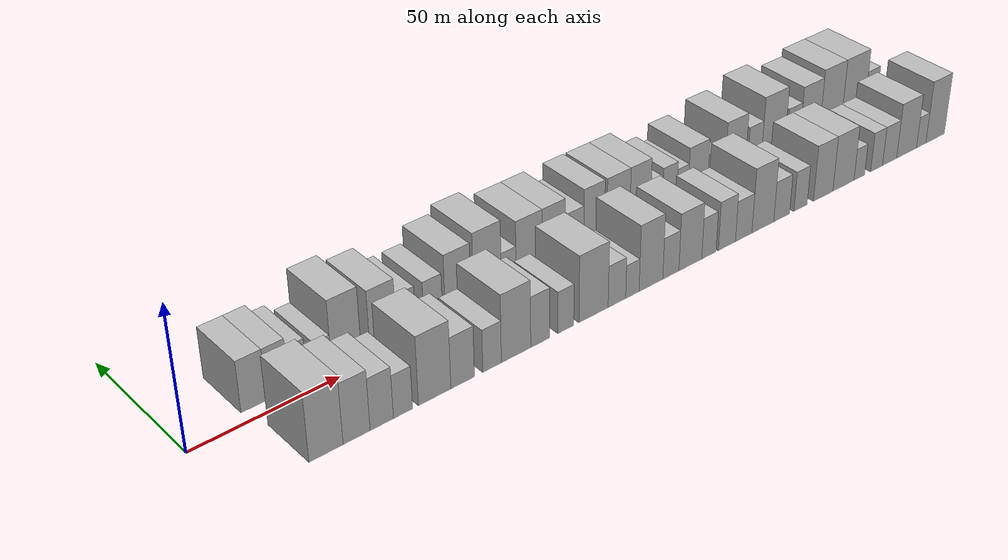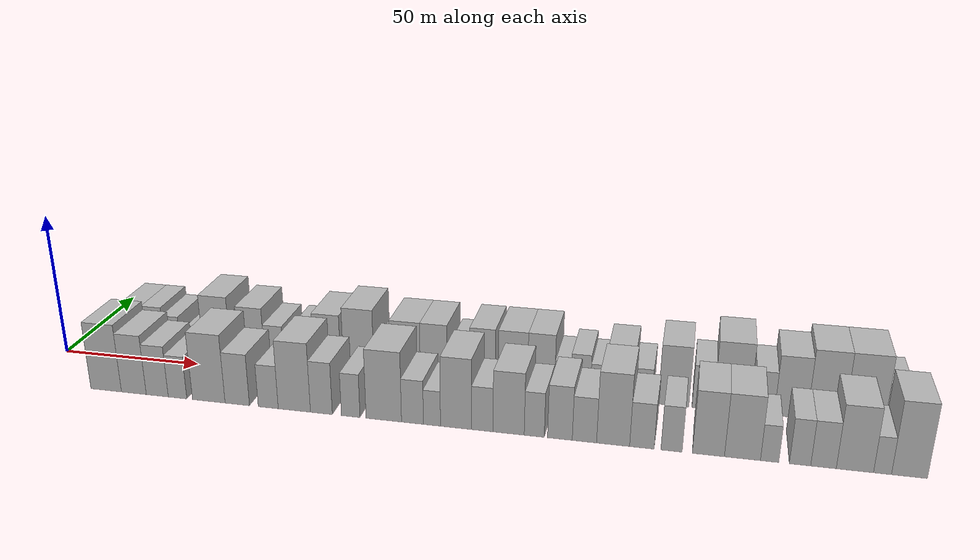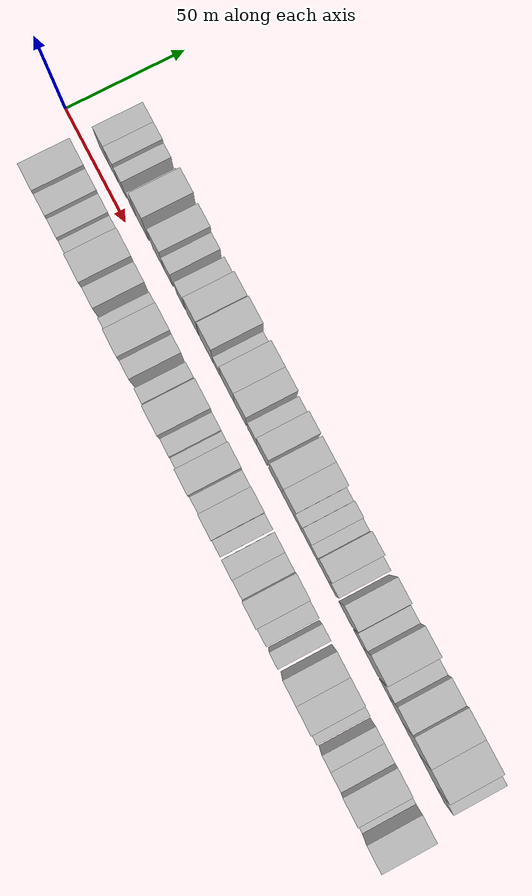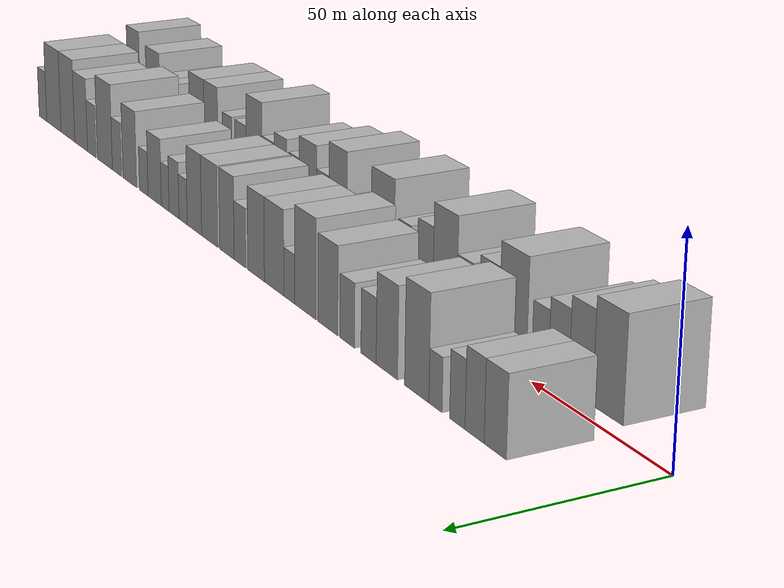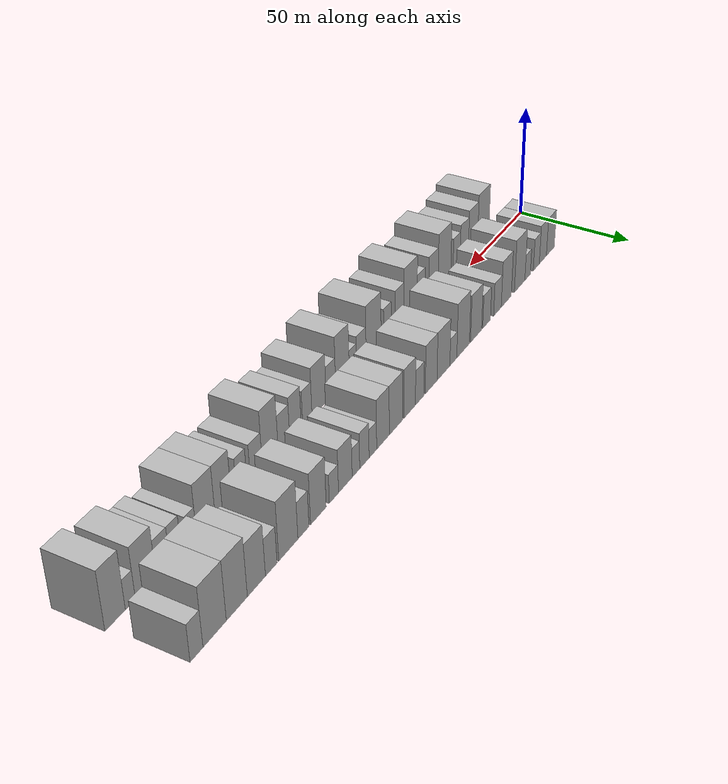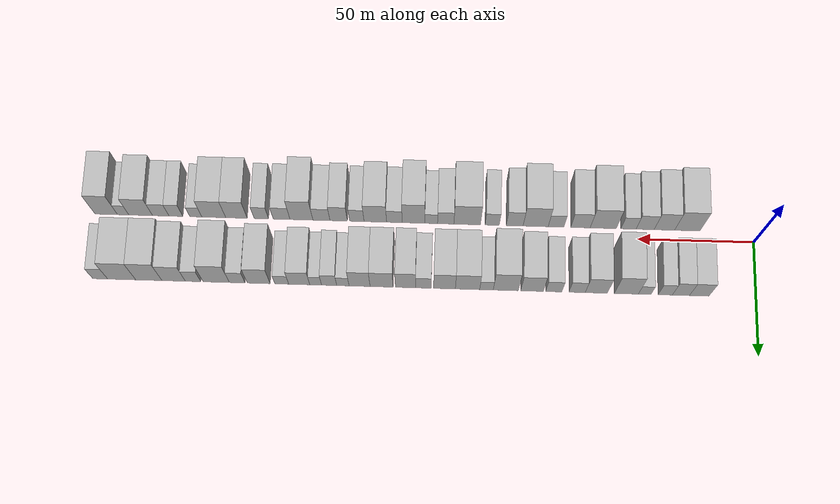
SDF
<sdf version="1.6">
 <world name="default">
  <scene>
   <sky><clouds><speed>12</speed></clouds></sky>
   <ambient>0.4 0.4 0.4 1</ambient>
   <background>0.7 0.7 0.7 1</background>
   <shadows>1</shadows>
  </scene>
  <gravity>0 0 -9.8066</gravity>
  <magnetic_field>6e-06 2.3e-05 -4.2e-05</magnetic_field>
  <physics default="0" name="default_physics" type="ode">
   <ode>
    <solver>
     <type>quick</type>
     <iters>10</iters>
     <sor>1.0</sor>
     <use_dynamic_moi_rescaling>0</use_dynamic_moi_rescaling>
    </solver>
    <constraints>
     <cfm>0</cfm>
     <erp>0.2</erp>
     <contact_max_correcting_vel>100</contact_max_correcting_vel>
     <contact_surface_layer>0.001</contact_surface_layer>
    </constraints>
   </ode>
   <max_step_size>0.004</max_step_size>
   <real_time_factor>1</real_time_factor>
   <real_time_update_rate>250</real_time_update_rate>
  </physics>
  <light name="sun" type="directional">
   <pose>0 0 10 0 0 0</pose>
   <diffuse>0.8 0.8 0.8 1</diffuse>
   <specular>0.2 0.2 0.2 1</specular>
   <attenuation>
    <range>1000</range>
    <constant>0.9</constant>
    <linear>0.01</linear>
    <quadratic>0.001</quadratic>
   </attenuation>
   <direction>-0.5 0.1 -0.9</direction>
  </light>
  <model name="building_1">
   <static>1</static>
   <pose>24.1604 14.5000 0 0.000000 0.000000 1.570796</pose>
   <link name="link">
    <pose>0 0 9.00 0 0 0</pose>
    <collision name="collision"><geometry><box><size>20.0000 8.3208 18.0000</size></box></geometry></collision>
    <visual name="visual">
     <cast_shadows>0</cast_shadows>
     <geometry><box><size>20.0000 8.3208 18.0000</size></box></geometry>
     <material>
      <script>
       <uri>model://HANNAS_wall/materials/scripts</uri>
       <uri>model://HANNAS_wall/materials/textures</uri>
       <name>vrc/HANNAS_wall</name>
      </script>
     </material>
    </visual>
   </link>
  </model>
  <model name="building_2">
   <static>1</static>
   <pose>31.9742 14.5000 0 0.000000 0.000000 1.570796</pose>
   <link name="link">
    <pose>0 0 9.00 0 0 0</pose>
    <collision name="collision"><geometry><box><size>20.0000 7.3067 18.0000</size></box></geometry></collision>
    <visual name="visual">
     <cast_shadows>0</cast_shadows>
     <geometry><box><size>20.0000 7.3067 18.0000</size></box></geometry>
     <material>
      <script>
       <uri>model://HANNAS_wall/materials/scripts</uri>
       <uri>model://HANNAS_wall/materials/textures</uri>
       <name>vrc/HANNAS_wall</name>
      </script>
     </material>
    </visual>
   </link>
  </model>
  <model name="building_3">
   <static>1</static>
   <pose>38.6614 14.5000 0 0.000000 0.000000 1.570796</pose>
   <link name="link">
    <pose>0 0 7.50 0 0 0</pose>
    <collision name="collision"><geometry><box><size>20.0000 6.0678 15.0000</size></box></geometry></collision>
    <visual name="visual">
     <cast_shadows>0</cast_shadows>
     <geometry><box><size>20.0000 6.0678 15.0000</size></box></geometry>
     <material>
      <script>
       <uri>model://HANNAS_wall/materials/scripts</uri>
       <uri>model://HANNAS_wall/materials/textures</uri>
       <name>vrc/HANNAS_wall</name>
      </script>
     </material>
    </visual>
   </link>
  </model>
  <model name="building_4">
   <static>1</static>
   <pose>47.3911 14.5000 0 0.000000 0.000000 1.570796</pose>
   <link name="link">
    <pose>0 0 6.00 0 0 0</pose>
    <collision name="collision"><geometry><box><size>20.0000 5.3915 12.0000</size></box></geometry></collision>
    <visual name="visual">
     <cast_shadows>0</cast_shadows>
     <geometry><box><size>20.0000 5.3915 12.0000</size></box></geometry>
     <material>
      <script>
       <uri>model://HANNAS_wall/materials/scripts</uri>
       <uri>model://HANNAS_wall/materials/textures</uri>
       <name>vrc/HANNAS_wall</name>
      </script>
     </material>
    </visual>
   </link>
  </model>
  <model name="building_5">
   <static>1</static>
   <pose>55.1870 14.5000 0 0.000000 0.000000 1.570796</pose>
   <link name="link">
    <pose>0 0 12.00 0 0 0</pose>
    <collision name="collision"><geometry><box><size>20.0000 10.2002 24.0000</size></box></geometry></collision>
    <visual name="visual">
     <cast_shadows>0</cast_shadows>
     <geometry><box><size>20.0000 10.2002 24.0000</size></box></geometry>
     <material>
      <script>
       <uri>model://HANNAS_wall/materials/scripts</uri>
       <uri>model://HANNAS_wall/materials/textures</uri>
       <name>vrc/HANNAS_wall</name>
      </script>
     </material>
    </visual>
   </link>
  </model>
  <model name="building_6">
   <static>1</static>
   <pose>68.0030 14.5000 0 0.000000 0.000000 1.570796</pose>
   <link name="link">
    <pose>0 0 10.50 0 0 0</pose>
    <collision name="collision"><geometry><box><size>20.0000 9.4317 21.0000</size></box></geometry></collision>
    <visual name="visual">
     <cast_shadows>0</cast_shadows>
     <geometry><box><size>20.0000 9.4317 21.0000</size></box></geometry>
     <material>
      <script>
       <uri>model://HANNAS_wall/materials/scripts</uri>
       <uri>model://HANNAS_wall/materials/textures</uri>
       <name>vrc/HANNAS_wall</name>
      </script>
     </material>
    </visual>
   </link>
  </model>
  <model name="building_7">
   <static>1</static>
   <pose>76.1859 14.5000 0 0.000000 0.000000 1.570796</pose>
   <link name="link">
    <pose>0 0 7.50 0 0 0</pose>
    <collision name="collision"><geometry><box><size>20.0000 6.9342 15.0000</size></box></geometry></collision>
    <visual name="visual">
     <cast_shadows>0</cast_shadows>
     <geometry><box><size>20.0000 6.9342 15.0000</size></box></geometry>
     <material>
      <script>
       <uri>model://HANNAS_wall/materials/scripts</uri>
       <uri>model://HANNAS_wall/materials/textures</uri>
       <name>vrc/HANNAS_wall</name>
      </script>
     </material>
    </visual>
   </link>
  </model>
  <model name="building_8">
   <static>1</static>
   <pose>86.0988 14.5000 0 0.000000 0.000000 1.570796</pose>
   <link name="link">
    <pose>0 0 7.50 0 0 0</pose>
    <collision name="collision"><geometry><box><size>20.0000 6.8917 15.0000</size></box></geometry></collision>
    <visual name="visual">
     <cast_shadows>0</cast_shadows>
     <geometry><box><size>20.0000 6.8917 15.0000</size></box></geometry>
     <material>
      <script>
       <uri>model://HANNAS_wall/materials/scripts</uri>
       <uri>model://HANNAS_wall/materials/textures</uri>
       <name>vrc/HANNAS_wall</name>
      </script>
     </material>
    </visual>
   </link>
  </model>
  <model name="building_9">
   <static>1</static>
   <pose>95.3687 14.5000 0 0.000000 0.000000 1.570796</pose>
   <link name="link">
    <pose>0 0 10.50 0 0 0</pose>
    <collision name="collision"><geometry><box><size>20.0000 9.6481 21.0000</size></box></geometry></collision>
    <visual name="visual">
     <cast_shadows>0</cast_shadows>
     <geometry><box><size>20.0000 9.6481 21.0000</size></box></geometry>
     <material>
      <script>
       <uri>model://HANNAS_wall/materials/scripts</uri>
       <uri>model://HANNAS_wall/materials/textures</uri>
       <name>vrc/HANNAS_wall</name>
      </script>
     </material>
    </visual>
   </link>
  </model>
  <model name="building_10">
   <static>1</static>
   <pose>106.5417 14.5000 0 0.000000 0.000000 1.570796</pose>
   <link name="link">
    <pose>0 0 12.00 0 0 0</pose>
    <collision name="collision"><geometry><box><size>20.0000 10.6978 24.0000</size></box></geometry></collision>
    <visual name="visual">
     <cast_shadows>0</cast_shadows>
     <geometry><box><size>20.0000 10.6978 24.0000</size></box></geometry>
     <material>
      <script>
       <uri>model://HANNAS_wall/materials/scripts</uri>
       <uri>model://HANNAS_wall/materials/textures</uri>
       <name>vrc/HANNAS_wall</name>
      </script>
     </material>
    </visual>
   </link>
  </model>
  <model name="building_11">
   <static>1</static>
   <pose>114.7731 14.5000 0 0.000000 0.000000 1.570796</pose>
   <link name="link">
    <pose>0 0 6.00 0 0 0</pose>
    <collision name="collision"><geometry><box><size>20.0000 5.7651 12.0000</size></box></geometry></collision>
    <visual name="visual">
     <cast_shadows>0</cast_shadows>
     <geometry><box><size>20.0000 5.7651 12.0000</size></box></geometry>
     <material>
      <script>
       <uri>model://HANNAS_wall/materials/scripts</uri>
       <uri>model://HANNAS_wall/materials/textures</uri>
       <name>vrc/HANNAS_wall</name>
      </script>
     </material>
    </visual>
   </link>
  </model>
  <model name="building_12">
   <static>1</static>
   <pose>122.8553 14.5000 0 0.000000 0.000000 1.570796</pose>
   <link name="link">
    <pose>0 0 10.50 0 0 0</pose>
    <collision name="collision"><geometry><box><size>20.0000 10.3992 21.0000</size></box></geometry></collision>
    <visual name="visual">
     <cast_shadows>0</cast_shadows>
     <geometry><box><size>20.0000 10.3992 21.0000</size></box></geometry>
     <material>
      <script>
       <uri>model://HANNAS_wall/materials/scripts</uri>
       <uri>model://HANNAS_wall/materials/textures</uri>
       <name>vrc/HANNAS_wall</name>
      </script>
     </material>
    </visual>
   </link>
  </model>
  <model name="building_13">
   <static>1</static>
   <pose>132.6908 14.5000 0 0.000000 0.000000 1.570796</pose>
   <link name="link">
    <pose>0 0 10.50 0 0 0</pose>
    <collision name="collision"><geometry><box><size>20.0000 9.2719 21.0000</size></box></geometry></collision>
    <visual name="visual">
     <cast_shadows>0</cast_shadows>
     <geometry><box><size>20.0000 9.2719 21.0000</size></box></geometry>
     <material>
      <script>
       <uri>model://HANNAS_wall/materials/scripts</uri>
       <uri>model://HANNAS_wall/materials/textures</uri>
       <name>vrc/HANNAS_wall</name>
      </script>
     </material>
    </visual>
   </link>
  </model>
  <model name="building_14">
   <static>1</static>
   <pose>141.6490 14.5000 0 0.000000 0.000000 1.570796</pose>
   <link name="link">
    <pose>0 0 7.50 0 0 0</pose>
    <collision name="collision"><geometry><box><size>20.0000 6.6446 15.0000</size></box></geometry></collision>
    <visual name="visual">
     <cast_shadows>0</cast_shadows>
     <geometry><box><size>20.0000 6.6446 15.0000</size></box></geometry>
     <material>
      <script>
       <uri>model://HANNAS_wall/materials/scripts</uri>
       <uri>model://HANNAS_wall/materials/textures</uri>
       <name>vrc/HANNAS_wall</name>
      </script>
     </material>
    </visual>
   </link>
  </model>
  <model name="building_15">
   <static>1</static>
   <pose>149.2623 14.5000 0 0.000000 0.000000 1.570796</pose>
   <link name="link">
    <pose>0 0 10.50 0 0 0</pose>
    <collision name="collision"><geometry><box><size>20.0000 8.5821 21.0000</size></box></geometry></collision>
    <visual name="visual">
     <cast_shadows>0</cast_shadows>
     <geometry><box><size>20.0000 8.5821 21.0000</size></box></geometry>
     <material>
      <script>
       <uri>model://HANNAS_wall/materials/scripts</uri>
       <uri>model://HANNAS_wall/materials/textures</uri>
       <name>vrc/HANNAS_wall</name>
      </script>
     </material>
    </visual>
   </link>
  </model>
  <model name="building_16">
   <static>1</static>
   <pose>159.4754 14.5000 0 0.000000 0.000000 1.570796</pose>
   <link name="link">
    <pose>0 0 10.50 0 0 0</pose>
    <collision name="collision"><geometry><box><size>20.0000 9.8442 21.0000</size></box></geometry></collision>
    <visual name="visual">
     <cast_shadows>0</cast_shadows>
     <geometry><box><size>20.0000 9.8442 21.0000</size></box></geometry>
     <material>
      <script>
       <uri>model://HANNAS_wall/materials/scripts</uri>
       <uri>model://HANNAS_wall/materials/textures</uri>
       <name>vrc/HANNAS_wall</name>
      </script>
     </material>
    </visual>
   </link>
  </model>
  <model name="building_17">
   <static>1</static>
   <pose>168.8859 14.5000 0 0.000000 0.000000 1.570796</pose>
   <link name="link">
    <pose>0 0 10.50 0 0 0</pose>
    <collision name="collision"><geometry><box><size>20.0000 8.9767 21.0000</size></box></geometry></collision>
    <visual name="visual">
     <cast_shadows>0</cast_shadows>
     <geometry><box><size>20.0000 8.9767 21.0000</size></box></geometry>
     <material>
      <script>
       <uri>model://HANNAS_wall/materials/scripts</uri>
       <uri>model://HANNAS_wall/materials/textures</uri>
       <name>vrc/HANNAS_wall</name>
      </script>
     </material>
    </visual>
   </link>
  </model>
  <model name="building_18">
   <static>1</static>
   <pose>176.0145 14.5000 0 0.000000 0.000000 1.570796</pose>
   <link name="link">
    <pose>0 0 6.00 0 0 0</pose>
    <collision name="collision"><geometry><box><size>20.0000 5.2805 12.0000</size></box></geometry></collision>
    <visual name="visual">
     <cast_shadows>0</cast_shadows>
     <geometry><box><size>20.0000 5.2805 12.0000</size></box></geometry>
     <material>
      <script>
       <uri>model://HANNAS_wall/materials/scripts</uri>
       <uri>model://HANNAS_wall/materials/textures</uri>
       <name>vrc/HANNAS_wall</name>
      </script>
     </material>
    </visual>
   </link>
  </model>
  <model name="building_19">
   <static>1</static>
   <pose>181.8732 14.5000 0 0.000000 0.000000 1.570796</pose>
   <link name="link">
    <pose>0 0 7.50 0 0 0</pose>
    <collision name="collision"><geometry><box><size>20.0000 6.4368 15.0000</size></box></geometry></collision>
    <visual name="visual">
     <cast_shadows>0</cast_shadows>
     <geometry><box><size>20.0000 6.4368 15.0000</size></box></geometry>
     <material>
      <script>
       <uri>model://HANNAS_wall/materials/scripts</uri>
       <uri>model://HANNAS_wall/materials/textures</uri>
       <name>vrc/HANNAS_wall</name>
      </script>
     </material>
    </visual>
   </link>
  </model>
  <model name="building_20">
   <static>1</static>
   <pose>187.6215 14.5000 0 0.000000 0.000000 1.570796</pose>
   <link name="link">
    <pose>0 0 6.00 0 0 0</pose>
    <collision name="collision"><geometry><box><size>20.0000 5.0598 12.0000</size></box></geometry></collision>
    <visual name="visual">
     <cast_shadows>0</cast_shadows>
     <geometry><box><size>20.0000 5.0598 12.0000</size></box></geometry>
     <material>
      <script>
       <uri>model://HANNAS_wall/materials/scripts</uri>
       <uri>model://HANNAS_wall/materials/textures</uri>
       <name>vrc/HANNAS_wall</name>
      </script>
     </material>
    </visual>
   </link>
  </model>
  <model name="building_21">
   <static>1</static>
   <pose>194.6478 14.5000 0 0.000000 0.000000 1.570796</pose>
   <link name="link">
    <pose>0 0 9.00 0 0 0</pose>
    <collision name="collision"><geometry><box><size>20.0000 8.9928 18.0000</size></box></geometry></collision>
    <visual name="visual">
     <cast_shadows>0</cast_shadows>
     <geometry><box><size>20.0000 8.9928 18.0000</size></box></geometry>
     <material>
      <script>
       <uri>model://HANNAS_wall/materials/scripts</uri>
       <uri>model://HANNAS_wall/materials/textures</uri>
       <name>vrc/HANNAS_wall</name>
      </script>
     </material>
    </visual>
   </link>
  </model>
  <model name="building_22">
   <static>1</static>
   <pose>202.1001 14.5000 0 0.000000 0.000000 1.570796</pose>
   <link name="link">
    <pose>0 0 6.00 0 0 0</pose>
    <collision name="collision"><geometry><box><size>20.0000 5.9119 12.0000</size></box></geometry></collision>
    <visual name="visual">
     <cast_shadows>0</cast_shadows>
     <geometry><box><size>20.0000 5.9119 12.0000</size></box></geometry>
     <material>
      <script>
       <uri>model://HANNAS_wall/materials/scripts</uri>
       <uri>model://HANNAS_wall/materials/textures</uri>
       <name>vrc/HANNAS_wall</name>
      </script>
     </material>
    </visual>
   </link>
  </model>
  <model name="building_23">
   <static>1</static>
   <pose>211.9157 14.5000 0 0.000000 0.000000 1.570796</pose>
   <link name="link">
    <pose>0 0 10.50 0 0 0</pose>
    <collision name="collision"><geometry><box><size>20.0000 9.7193 21.0000</size></box></geometry></collision>
    <visual name="visual">
     <cast_shadows>0</cast_shadows>
     <geometry><box><size>20.0000 9.7193 21.0000</size></box></geometry>
     <material>
      <script>
       <uri>model://HANNAS_wall/materials/scripts</uri>
       <uri>model://HANNAS_wall/materials/textures</uri>
       <name>vrc/HANNAS_wall</name>
      </script>
     </material>
    </visual>
   </link>
  </model>
  <model name="building_24">
   <static>1</static>
   <pose>221.1197 14.5000 0 0.000000 0.000000 1.570796</pose>
   <link name="link">
    <pose>0 0 7.50 0 0 0</pose>
    <collision name="collision"><geometry><box><size>20.0000 6.6887 15.0000</size></box></geometry></collision>
    <visual name="visual">
     <cast_shadows>0</cast_shadows>
     <geometry><box><size>20.0000 6.6887 15.0000</size></box></geometry>
     <material>
      <script>
       <uri>model://HANNAS_wall/materials/scripts</uri>
       <uri>model://HANNAS_wall/materials/textures</uri>
       <name>vrc/HANNAS_wall</name>
      </script>
     </material>
    </visual>
   </link>
  </model>
  <model name="building_25">
   <static>1</static>
   <pose>230.0817 14.5000 0 0.000000 0.000000 1.570796</pose>
   <link name="link">
    <pose>0 0 12.00 0 0 0</pose>
    <collision name="collision"><geometry><box><size>20.0000 11.2353 24.0000</size></box></geometry></collision>
    <visual name="visual">
     <cast_shadows>0</cast_shadows>
     <geometry><box><size>20.0000 11.2353 24.0000</size></box></geometry>
     <material>
      <script>
       <uri>model://HANNAS_wall/materials/scripts</uri>
       <uri>model://HANNAS_wall/materials/textures</uri>
       <name>vrc/HANNAS_wall</name>
      </script>
     </material>
    </visual>
   </link>
  </model>
  <model name="building_26">
   <static>1</static>
   <pose>240.0047 14.5000 0 0.000000 0.000000 1.570796</pose>
   <link name="link">
    <pose>0 0 7.50 0 0 0</pose>
    <collision name="collision"><geometry><box><size>20.0000 6.6107 15.0000</size></box></geometry></collision>
    <visual name="visual">
     <cast_shadows>0</cast_shadows>
     <geometry><box><size>20.0000 6.6107 15.0000</size></box></geometry>
     <material>
      <script>
       <uri>model://HANNAS_wall/materials/scripts</uri>
       <uri>model://HANNAS_wall/materials/textures</uri>
       <name>vrc/HANNAS_wall</name>
      </script>
     </material>
    </visual>
   </link>
  </model>
  <model name="building_27">
   <static>1</static>
   <pose>248.3241 14.5000 0 0.000000 0.000000 1.570796</pose>
   <link name="link">
    <pose>0 0 10.50 0 0 0</pose>
    <collision name="collision"><geometry><box><size>20.0000 10.0281 21.0000</size></box></geometry></collision>
    <visual name="visual">
     <cast_shadows>0</cast_shadows>
     <geometry><box><size>20.0000 10.0281 21.0000</size></box></geometry>
     <material>
      <script>
       <uri>model://HANNAS_wall/materials/scripts</uri>
       <uri>model://HANNAS_wall/materials/textures</uri>
       <name>vrc/HANNAS_wall</name>
      </script>
     </material>
    </visual>
   </link>
  </model>
  <model name="building_28">
   <static>1</static>
   <pose>258.9461 14.5000 0 0.000000 0.000000 1.570796</pose>
   <link name="link">
    <pose>0 0 12.00 0 0 0</pose>
    <collision name="collision"><geometry><box><size>20.0000 11.2160 24.0000</size></box></geometry></collision>
    <visual name="visual">
     <cast_shadows>0</cast_shadows>
     <geometry><box><size>20.0000 11.2160 24.0000</size></box></geometry>
     <material>
      <script>
       <uri>model://HANNAS_wall/materials/scripts</uri>
       <uri>model://HANNAS_wall/materials/textures</uri>
       <name>vrc/HANNAS_wall</name>
      </script>
     </material>
    </visual>
   </link>
  </model>
  <model name="building_29">
   <static>1</static>
   <pose>270.5428 14.5000 0 0.000000 0.000000 1.570796</pose>
   <link name="link">
    <pose>0 0 12.00 0 0 0</pose>
    <collision name="collision"><geometry><box><size>20.0000 11.9774 24.0000</size></box></geometry></collision>
    <visual name="visual">
     <cast_shadows>0</cast_shadows>
     <geometry><box><size>20.0000 11.9774 24.0000</size></box></geometry>
     <material>
      <script>
       <uri>model://HANNAS_wall/materials/scripts</uri>
       <uri>model://HANNAS_wall/materials/textures</uri>
       <name>vrc/HANNAS_wall</name>
      </script>
     </material>
    </visual>
   </link>
  </model>
  <model name="building_30">
   <static>1</static>
   <pose>279.7384 14.5000 0 0.000000 0.000000 1.570796</pose>
   <link name="link">
    <pose>0 0 7.50 0 0 0</pose>
    <collision name="collision"><geometry><box><size>20.0000 6.4136 15.0000</size></box></geometry></collision>
    <visual name="visual">
     <cast_shadows>0</cast_shadows>
     <geometry><box><size>20.0000 6.4136 15.0000</size></box></geometry>
     <material>
      <script>
       <uri>model://HANNAS_wall/materials/scripts</uri>
       <uri>model://HANNAS_wall/materials/textures</uri>
       <name>vrc/HANNAS_wall</name>
      </script>
     </material>
    </visual>
   </link>
  </model>
  <model name="building_31">
   <static>1</static>
   <pose>28.4943 -14.5000 0 0.000000 0.000000 1.570796</pose>
   <link name="link">
    <pose>0 0 12.00 0 0 0</pose>
    <collision name="collision"><geometry><box><size>20.0000 10.9887 24.0000</size></box></geometry></collision>
    <visual name="visual">
     <cast_shadows>0</cast_shadows>
     <geometry><box><size>20.0000 10.9887 24.0000</size></box></geometry>
     <material>
      <script>
       <uri>model://HANNAS_wall/materials/scripts</uri>
       <uri>model://HANNAS_wall/materials/textures</uri>
       <name>vrc/HANNAS_wall</name>
      </script>
     </material>
    </visual>
   </link>
  </model>
  <model name="building_32">
   <static>1</static>
   <pose>38.4174 -14.5000 0 0.000000 0.000000 1.570796</pose>
   <link name="link">
    <pose>0 0 10.50 0 0 0</pose>
    <collision name="collision"><geometry><box><size>20.0000 8.8575 21.0000</size></box></geometry></collision>
    <visual name="visual">
     <cast_shadows>0</cast_shadows>
     <geometry><box><size>20.0000 8.8575 21.0000</size></box></geometry>
     <material>
      <script>
       <uri>model://HANNAS_wall/materials/scripts</uri>
       <uri>model://HANNAS_wall/materials/textures</uri>
       <name>vrc/HANNAS_wall</name>
      </script>
     </material>
    </visual>
   </link>
  </model>
  <model name="building_33">
   <static>1</static>
   <pose>46.7349 -14.5000 0 0.000000 0.000000 1.570796</pose>
   <link name="link">
    <pose>0 0 9.00 0 0 0</pose>
    <collision name="collision"><geometry><box><size>20.0000 7.7775 18.0000</size></box></geometry></collision>
    <visual name="visual">
     <cast_shadows>0</cast_shadows>
     <geometry><box><size>20.0000 7.7775 18.0000</size></box></geometry>
     <material>
      <script>
       <uri>model://HANNAS_wall/materials/scripts</uri>
       <uri>model://HANNAS_wall/materials/textures</uri>
       <name>vrc/HANNAS_wall</name>
      </script>
     </material>
    </visual>
   </link>
  </model>
  <model name="building_34">
   <static>1</static>
   <pose>53.8844 -14.5000 0 0.000000 0.000000 1.570796</pose>
   <link name="link">
    <pose>0 0 7.50 0 0 0</pose>
    <collision name="collision"><geometry><box><size>20.0000 6.5215 15.0000</size></box></geometry></collision>
    <visual name="visual">
     <cast_shadows>0</cast_shadows>
     <geometry><box><size>20.0000 6.5215 15.0000</size></box></geometry>
     <material>
      <script>
       <uri>model://HANNAS_wall/materials/scripts</uri>
       <uri>model://HANNAS_wall/materials/textures</uri>
       <name>vrc/HANNAS_wall</name>
      </script>
     </material>
    </visual>
   </link>
  </model>
  <model name="building_35">
   <static>1</static>
   <pose>64.7902 -14.5000 0 0.000000 0.000000 1.570796</pose>
   <link name="link">
    <pose>0 0 12.00 0 0 0</pose>
    <collision name="collision"><geometry><box><size>20.0000 11.2901 24.0000</size></box></geometry></collision>
    <visual name="visual">
     <cast_shadows>0</cast_shadows>
     <geometry><box><size>20.0000 11.2901 24.0000</size></box></geometry>
     <material>
      <script>
       <uri>model://HANNAS_wall/materials/scripts</uri>
       <uri>model://HANNAS_wall/materials/textures</uri>
       <name>vrc/HANNAS_wall</name>
      </script>
     </material>
    </visual>
   </link>
  </model>
  <model name="building_36">
   <static>1</static>
   <pose>74.6236 -14.5000 0 0.000000 0.000000 1.570796</pose>
   <link name="link">
    <pose>0 0 9.00 0 0 0</pose>
    <collision name="collision"><geometry><box><size>20.0000 8.3767 18.0000</size></box></geometry></collision>
    <visual name="visual">
     <cast_shadows>0</cast_shadows>
     <geometry><box><size>20.0000 8.3767 18.0000</size></box></geometry>
     <material>
      <script>
       <uri>model://HANNAS_wall/materials/scripts</uri>
       <uri>model://HANNAS_wall/materials/textures</uri>
       <name>vrc/HANNAS_wall</name>
      </script>
     </material>
    </visual>
   </link>
  </model>
  <model name="building_37">
   <static>1</static>
   <pose>85.1966 -14.5000 0 0.000000 0.000000 1.570796</pose>
   <link name="link">
    <pose>0 0 7.50 0 0 0</pose>
    <collision name="collision"><geometry><box><size>20.0000 6.7694 15.0000</size></box></geometry></collision>
    <visual name="visual">
     <cast_shadows>0</cast_shadows>
     <geometry><box><size>20.0000 6.7694 15.0000</size></box></geometry>
     <material>
      <script>
       <uri>model://HANNAS_wall/materials/scripts</uri>
       <uri>model://HANNAS_wall/materials/textures</uri>
       <name>vrc/HANNAS_wall</name>
      </script>
     </material>
    </visual>
   </link>
  </model>
  <model name="building_38">
   <static>1</static>
   <pose>94.0006 -14.5000 0 0.000000 0.000000 1.570796</pose>
   <link name="link">
    <pose>0 0 12.00 0 0 0</pose>
    <collision name="collision"><geometry><box><size>20.0000 10.8386 24.0000</size></box></geometry></collision>
    <visual name="visual">
     <cast_shadows>0</cast_shadows>
     <geometry><box><size>20.0000 10.8386 24.0000</size></box></geometry>
     <material>
      <script>
       <uri>model://HANNAS_wall/materials/scripts</uri>
       <uri>model://HANNAS_wall/materials/textures</uri>
       <name>vrc/HANNAS_wall</name>
      </script>
     </material>
    </visual>
   </link>
  </model>
  <model name="building_39">
   <static>1</static>
   <pose>103.0641 -14.5000 0 0.000000 0.000000 1.570796</pose>
   <link name="link">
    <pose>0 0 9.00 0 0 0</pose>
    <collision name="collision"><geometry><box><size>20.0000 7.2886 18.0000</size></box></geometry></collision>
    <visual name="visual">
     <cast_shadows>0</cast_shadows>
     <geometry><box><size>20.0000 7.2886 18.0000</size></box></geometry>
     <material>
      <script>
       <uri>model://HANNAS_wall/materials/scripts</uri>
       <uri>model://HANNAS_wall/materials/textures</uri>
       <name>vrc/HANNAS_wall</name>
      </script>
     </material>
    </visual>
   </link>
  </model>
  <model name="building_40">
   <static>1</static>
   <pose>112.7686 -14.5000 0 0.000000 0.000000 1.570796</pose>
   <link name="link">
    <pose>0 0 7.50 0 0 0</pose>
    <collision name="collision"><geometry><box><size>20.0000 6.1204 15.0000</size></box></geometry></collision>
    <visual name="visual">
     <cast_shadows>0</cast_shadows>
     <geometry><box><size>20.0000 6.1204 15.0000</size></box></geometry>
     <material>
      <script>
       <uri>model://HANNAS_wall/materials/scripts</uri>
       <uri>model://HANNAS_wall/materials/textures</uri>
       <name>vrc/HANNAS_wall</name>
      </script>
     </material>
    </visual>
   </link>
  </model>
  <model name="building_41">
   <static>1</static>
   <pose>123.5921 -14.5000 0 0.000000 0.000000 1.570796</pose>
   <link name="link">
    <pose>0 0 12.00 0 0 0</pose>
    <collision name="collision"><geometry><box><size>20.0000 11.5266 24.0000</size></box></geometry></collision>
    <visual name="visual">
     <cast_shadows>0</cast_shadows>
     <geometry><box><size>20.0000 11.5266 24.0000</size></box></geometry>
     <material>
      <script>
       <uri>model://HANNAS_wall/materials/scripts</uri>
       <uri>model://HANNAS_wall/materials/textures</uri>
       <name>vrc/HANNAS_wall</name>
      </script>
     </material>
    </visual>
   </link>
  </model>
  <model name="building_42">
   <static>1</static>
   <pose>132.8806 -14.5000 0 0.000000 0.000000 1.570796</pose>
   <link name="link">
    <pose>0 0 7.50 0 0 0</pose>
    <collision name="collision"><geometry><box><size>20.0000 7.0504 15.0000</size></box></geometry></collision>
    <visual name="visual">
     <cast_shadows>0</cast_shadows>
     <geometry><box><size>20.0000 7.0504 15.0000</size></box></geometry>
     <material>
      <script>
       <uri>model://HANNAS_wall/materials/scripts</uri>
       <uri>model://HANNAS_wall/materials/textures</uri>
       <name>vrc/HANNAS_wall</name>
      </script>
     </material>
    </visual>
   </link>
  </model>
  <model name="building_43">
   <static>1</static>
   <pose>139.1309 -14.5000 0 0.000000 0.000000 1.570796</pose>
   <link name="link">
    <pose>0 0 6.00 0 0 0</pose>
    <collision name="collision"><geometry><box><size>20.0000 5.4501 12.0000</size></box></geometry></collision>
    <visual name="visual">
     <cast_shadows>0</cast_shadows>
     <geometry><box><size>20.0000 5.4501 12.0000</size></box></geometry>
     <material>
      <script>
       <uri>model://HANNAS_wall/materials/scripts</uri>
       <uri>model://HANNAS_wall/materials/textures</uri>
       <name>vrc/HANNAS_wall</name>
      </script>
     </material>
    </visual>
   </link>
  </model>
  <model name="building_44">
   <static>1</static>
   <pose>146.7571 -14.5000 0 0.000000 0.000000 1.570796</pose>
   <link name="link">
    <pose>0 0 12.00 0 0 0</pose>
    <collision name="collision"><geometry><box><size>20.0000 9.8023 24.0000</size></box></geometry></collision>
    <visual name="visual">
     <cast_shadows>0</cast_shadows>
     <geometry><box><size>20.0000 9.8023 24.0000</size></box></geometry>
     <material>
      <script>
       <uri>model://HANNAS_wall/materials/scripts</uri>
       <uri>model://HANNAS_wall/materials/textures</uri>
       <name>vrc/HANNAS_wall</name>
      </script>
     </material>
    </visual>
   </link>
  </model>
  <model name="building_45">
   <static>1</static>
   <pose>155.0330 -14.5000 0 0.000000 0.000000 1.570796</pose>
   <link name="link">
    <pose>0 0 7.50 0 0 0</pose>
    <collision name="collision"><geometry><box><size>20.0000 6.7495 15.0000</size></box></geometry></collision>
    <visual name="visual">
     <cast_shadows>0</cast_shadows>
     <geometry><box><size>20.0000 6.7495 15.0000</size></box></geometry>
     <material>
      <script>
       <uri>model://HANNAS_wall/materials/scripts</uri>
       <uri>model://HANNAS_wall/materials/textures</uri>
       <name>vrc/HANNAS_wall</name>
      </script>
     </material>
    </visual>
   </link>
  </model>
  <model name="building_46">
   <static>1</static>
   <pose>163.2947 -14.5000 0 0.000000 0.000000 1.570796</pose>
   <link name="link">
    <pose>0 0 10.50 0 0 0</pose>
    <collision name="collision"><geometry><box><size>20.0000 9.7739 21.0000</size></box></geometry></collision>
    <visual name="visual">
     <cast_shadows>0</cast_shadows>
     <geometry><box><size>20.0000 9.7739 21.0000</size></box></geometry>
     <material>
      <script>
       <uri>model://HANNAS_wall/materials/scripts</uri>
       <uri>model://HANNAS_wall/materials/textures</uri>
       <name>vrc/HANNAS_wall</name>
      </script>
     </material>
    </visual>
   </link>
  </model>
  <model name="building_47">
   <static>1</static>
   <pose>171.2815 -14.5000 0 0.000000 0.000000 1.570796</pose>
   <link name="link">
    <pose>0 0 7.50 0 0 0</pose>
    <collision name="collision"><geometry><box><size>20.0000 6.1996 15.0000</size></box></geometry></collision>
    <visual name="visual">
     <cast_shadows>0</cast_shadows>
     <geometry><box><size>20.0000 6.1996 15.0000</size></box></geometry>
     <material>
      <script>
       <uri>model://HANNAS_wall/materials/scripts</uri>
       <uri>model://HANNAS_wall/materials/textures</uri>
       <name>vrc/HANNAS_wall</name>
      </script>
     </material>
    </visual>
   </link>
  </model>
  <model name="building_48">
   <static>1</static>
   <pose>179.1591 -14.5000 0 0.000000 0.000000 1.570796</pose>
   <link name="link">
    <pose>0 0 9.00 0 0 0</pose>
    <collision name="collision"><geometry><box><size>20.0000 7.5556 18.0000</size></box></geometry></collision>
    <visual name="visual">
     <cast_shadows>0</cast_shadows>
     <geometry><box><size>20.0000 7.5556 18.0000</size></box></geometry>
     <material>
      <script>
       <uri>model://HANNAS_wall/materials/scripts</uri>
       <uri>model://HANNAS_wall/materials/textures</uri>
       <name>vrc/HANNAS_wall</name>
      </script>
     </material>
    </visual>
   </link>
  </model>
  <model name="building_49">
   <static>1</static>
   <pose>186.6302 -14.5000 0 0.000000 0.000000 1.570796</pose>
   <link name="link">
    <pose>0 0 7.50 0 0 0</pose>
    <collision name="collision"><geometry><box><size>20.0000 7.3866 15.0000</size></box></geometry></collision>
    <visual name="visual">
     <cast_shadows>0</cast_shadows>
     <geometry><box><size>20.0000 7.3866 15.0000</size></box></geometry>
     <material>
      <script>
       <uri>model://HANNAS_wall/materials/scripts</uri>
       <uri>model://HANNAS_wall/materials/textures</uri>
       <name>vrc/HANNAS_wall</name>
      </script>
     </material>
    </visual>
   </link>
  </model>
  <model name="building_50">
   <static>1</static>
   <pose>195.2859 -14.5000 0 0.000000 0.000000 1.570796</pose>
   <link name="link">
    <pose>0 0 12.00 0 0 0</pose>
    <collision name="collision"><geometry><box><size>20.0000 9.9250 24.0000</size></box></geometry></collision>
    <visual name="visual">
     <cast_shadows>0</cast_shadows>
     <geometry><box><size>20.0000 9.9250 24.0000</size></box></geometry>
     <material>
      <script>
       <uri>model://HANNAS_wall/materials/scripts</uri>
       <uri>model://HANNAS_wall/materials/textures</uri>
       <name>vrc/HANNAS_wall</name>
      </script>
     </material>
    </visual>
   </link>
  </model>
  <model name="building_51">
   <static>1</static>
   <pose>203.8950 -14.5000 0 0.000000 0.000000 1.570796</pose>
   <link name="link">
    <pose>0 0 7.50 0 0 0</pose>
    <collision name="collision"><geometry><box><size>20.0000 7.2931 15.0000</size></box></geometry></collision>
    <visual name="visual">
     <cast_shadows>0</cast_shadows>
     <geometry><box><size>20.0000 7.2931 15.0000</size></box></geometry>
     <material>
      <script>
       <uri>model://HANNAS_wall/materials/scripts</uri>
       <uri>model://HANNAS_wall/materials/textures</uri>
       <name>vrc/HANNAS_wall</name>
      </script>
     </material>
    </visual>
   </link>
  </model>
  <model name="building_52">
   <static>1</static>
   <pose>212.6656 -14.5000 0 0.000000 0.000000 1.570796</pose>
   <link name="link">
    <pose>0 0 7.50 0 0 0</pose>
    <collision name="collision"><geometry><box><size>20.0000 6.2482 15.0000</size></box></geometry></collision>
    <visual name="visual">
     <cast_shadows>0</cast_shadows>
     <geometry><box><size>20.0000 6.2482 15.0000</size></box></geometry>
     <material>
      <script>
       <uri>model://HANNAS_wall/materials/scripts</uri>
       <uri>model://HANNAS_wall/materials/textures</uri>
       <name>vrc/HANNAS_wall</name>
      </script>
     </material>
    </visual>
   </link>
  </model>
  <model name="building_53">
   <static>1</static>
   <pose>223.4510 -14.5000 0 0.000000 0.000000 1.570796</pose>
   <link name="link">
    <pose>0 0 10.50 0 0 0</pose>
    <collision name="collision"><geometry><box><size>20.0000 9.3225 21.0000</size></box></geometry></collision>
    <visual name="visual">
     <cast_shadows>0</cast_shadows>
     <geometry><box><size>20.0000 9.3225 21.0000</size></box></geometry>
     <material>
      <script>
       <uri>model://HANNAS_wall/materials/scripts</uri>
       <uri>model://HANNAS_wall/materials/textures</uri>
       <name>vrc/HANNAS_wall</name>
      </script>
     </material>
    </visual>
   </link>
  </model>
  <model name="building_54">
   <static>1</static>
   <pose>233.2850 -14.5000 0 0.000000 0.000000 1.570796</pose>
   <link name="link">
    <pose>0 0 10.50 0 0 0</pose>
    <collision name="collision"><geometry><box><size>20.0000 10.3456 21.0000</size></box></geometry></collision>
    <visual name="visual">
     <cast_shadows>0</cast_shadows>
     <geometry><box><size>20.0000 10.3456 21.0000</size></box></geometry>
     <material>
      <script>
       <uri>model://HANNAS_wall/materials/scripts</uri>
       <uri>model://HANNAS_wall/materials/textures</uri>
       <name>vrc/HANNAS_wall</name>
      </script>
     </material>
    </visual>
   </link>
  </model>
  <model name="building_55">
   <static>1</static>
   <pose>241.0732 -14.5000 0 0.000000 0.000000 1.570796</pose>
   <link name="link">
    <pose>0 0 6.00 0 0 0</pose>
    <collision name="collision"><geometry><box><size>20.0000 5.2307 12.0000</size></box></geometry></collision>
    <visual name="visual">
     <cast_shadows>0</cast_shadows>
     <geometry><box><size>20.0000 5.2307 12.0000</size></box></geometry>
     <material>
      <script>
       <uri>model://HANNAS_wall/materials/scripts</uri>
       <uri>model://HANNAS_wall/materials/textures</uri>
       <name>vrc/HANNAS_wall</name>
      </script>
     </material>
    </visual>
   </link>
  </model>
  <model name="building_56">
   <static>1</static>
   <pose>249.6919 -14.5000 0 0.000000 0.000000 1.570796</pose>
   <link name="link">
    <pose>0 0 7.50 0 0 0</pose>
    <collision name="collision"><geometry><box><size>20.0000 6.0066 15.0000</size></box></geometry></collision>
    <visual name="visual">
     <cast_shadows>0</cast_shadows>
     <geometry><box><size>20.0000 6.0066 15.0000</size></box></geometry>
     <material>
      <script>
       <uri>model://HANNAS_wall/materials/scripts</uri>
       <uri>model://HANNAS_wall/materials/textures</uri>
       <name>vrc/HANNAS_wall</name>
      </script>
     </material>
    </visual>
   </link>
  </model>
  <model name="building_57">
   <static>1</static>
   <pose>256.2719 -14.5000 0 0.000000 0.000000 1.570796</pose>
   <link name="link">
    <pose>0 0 7.50 0 0 0</pose>
    <collision name="collision"><geometry><box><size>20.0000 7.1534 15.0000</size></box></geometry></collision>
    <visual name="visual">
     <cast_shadows>0</cast_shadows>
     <geometry><box><size>20.0000 7.1534 15.0000</size></box></geometry>
     <material>
      <script>
       <uri>model://HANNAS_wall/materials/scripts</uri>
       <uri>model://HANNAS_wall/materials/textures</uri>
       <name>vrc/HANNAS_wall</name>
      </script>
     </material>
    </visual>
   </link>
  </model>
  <model name="building_58">
   <static>1</static>
   <pose>265.0054 -14.5000 0 0.000000 0.000000 1.570796</pose>
   <link name="link">
    <pose>0 0 10.50 0 0 0</pose>
    <collision name="collision"><geometry><box><size>20.0000 10.3135 21.0000</size></box></geometry></collision>
    <visual name="visual">
     <cast_shadows>0</cast_shadows>
     <geometry><box><size>20.0000 10.3135 21.0000</size></box></geometry>
     <material>
      <script>
       <uri>model://HANNAS_wall/materials/scripts</uri>
       <uri>model://HANNAS_wall/materials/textures</uri>
       <name>vrc/HANNAS_wall</name>
      </script>
     </material>
    </visual>
   </link>
  </model>
  <model name="building_59">
   <static>1</static>
   <pose>272.6221 -14.5000 0 0.000000 0.000000 1.570796</pose>
   <link name="link">
    <pose>0 0 6.00 0 0 0</pose>
    <collision name="collision"><geometry><box><size>20.0000 4.9200 12.0000</size></box></geometry></collision>
    <visual name="visual">
     <cast_shadows>0</cast_shadows>
     <geometry><box><size>20.0000 4.9200 12.0000</size></box></geometry>
     <material>
      <script>
       <uri>model://HANNAS_wall/materials/scripts</uri>
       <uri>model://HANNAS_wall/materials/textures</uri>
       <name>vrc/HANNAS_wall</name>
      </script>
     </material>
    </visual>
   </link>
  </model>
  <model name="building_60">
   <static>1</static>
   <pose>279.9718 -14.5000 0 0.000000 0.000000 1.570796</pose>
   <link name="link">
    <pose>0 0 12.00 0 0 0</pose>
    <collision name="collision"><geometry><box><size>20.0000 9.7793 24.0000</size></box></geometry></collision>
    <visual name="visual">
     <cast_shadows>0</cast_shadows>
     <geometry><box><size>20.0000 9.7793 24.0000</size></box></geometry>
     <material>
      <script>
       <uri>model://HANNAS_wall/materials/scripts</uri>
       <uri>model://HANNAS_wall/materials/textures</uri>
       <name>vrc/HANNAS_wall</name>
      </script>
     </material>
    </visual>
   </link>
  </model>
 </world>
</sdf>
